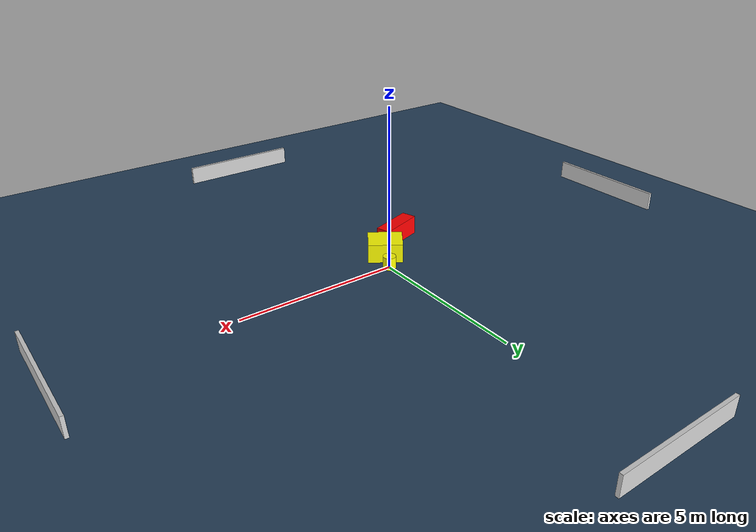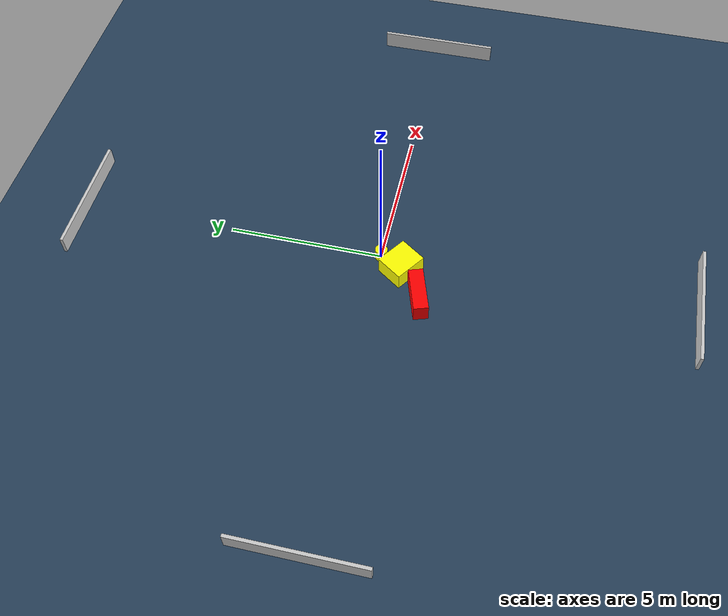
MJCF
<?xml version="1.0" ?>
<mujoco model="generated_environment">
  <option timestep="0.01" integrator="RK4" cone="elliptic"/>
  <default>
    <geom density="1"/>
  </default>
  <asset>
    <texture builtin="gradient" height="3072" name="skybox" rgb1="0.3 0.5 0.7" rgb2="0 0 0" type="skybox" width="512"/>
    <texture builtin="checker" height="300" name="groundplane" rgb1="0.2 0.3 0.4" rgb2="0.1 0.2 0.3" type="2d" width="300"/>
    <material name="groundplane" reflectance="0.2" texrepeat="5 5" texture="groundplane"/>
  </asset>
  <worldbody>
    <light dir="0 0 -1" directional="true" pos="0 0 1.5"/>
    <geom condim="3" friction="0.5 0.005 0.001" material="groundplane" name="floor" pos="0 0 0" size="0 0 0.05" type="plane"/>
    <body name="walls">
      <geom name="wall_1" condim="4" pos="-10.0 0.0 0.3" rgba="0.800000011920929 0.800000011920929 0.800000011920929 1.0" size="0.05 2.0 0.3" type="box"/>
      <geom name="wall_2" condim="4" pos="10.0 0.0 0.3" rgba="0.800000011920929 0.800000011920929 0.800000011920929 1.0" size="0.05 2.0 0.3" type="box"/>
      <geom name="wall_3" condim="4" pos="0.0 -10.0 0.3" rgba="0.800000011920929 0.800000011920929 0.800000011920929 1.0" size="2.0 0.05 0.3" type="box"/>
      <geom name="wall_4" condim="4" pos="0.0 10.0 0.3" rgba="0.800000011920929 0.800000011920929 0.800000011920929 1.0" size="2.0 0.05 0.3" type="box"/>
    </body>
    <body name="robot">
      <joint name="joint_x" type="slide" pos="0 0 0" axis="1 0 0"/>
      <joint name="joint_y" type="slide" pos="0 0 0" axis="0 1 0"/>
      <geom name="robot" type="cylinder" pos="0.0 0.0 0.2" size="0.2 0.2 0.0" mass="5.0" friction="1.0 0.005 0.0001" condim="4" rgba="1.0 1.0 0.0 1.0"/>
    </body>
    <body name="obstacle_1_movable">
      <geom name="obstacle_1_movable" condim="4" pos="-0.3651673201881374 -0.7125169847043792 0.3" euler="0 0 325.2411426903159" friction="0.0 0.005 0.001" rgba="1.0 1.0 0.0 1.0" size="0.5367108574883908 0.4641369339824101 0.3" type="box" mass="0.1"/>
      <joint type="free"/>
    </body>
    <body name="obstacle_2_static">
      <geom name="obstacle_2_static" condim="4" pos="-1.3642728213073634 -1.4617809153680865 0.3" euler="0 0 287.9033683837054" friction="0.0 0.005 0.001" rgba="1.0 0.0 0.0 1.0" size="0.23544098732900826 0.7270448874711786 0.3" type="box"/>
    </body>
  </worldbody>
  <actuator>
    <motor name="actuator_x" joint="joint_x" gear="1" ctrlrange="-1 1"/>
    <motor name="actuator_y" joint="joint_y" gear="1" ctrlrange="-1 1"/>
  </actuator>
</mujoco>
